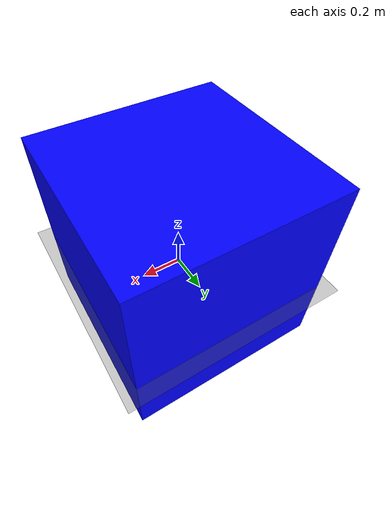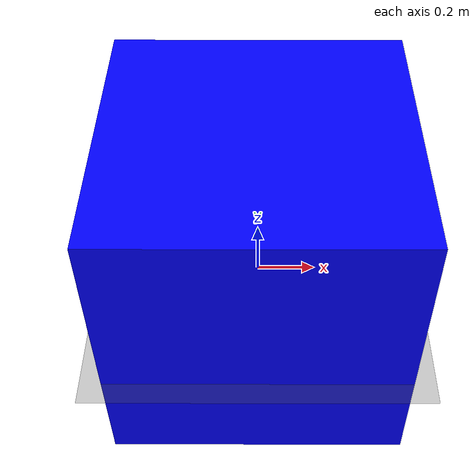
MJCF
<mujoco model="pid_step_test">
  <compiler angle="degree" coordinate="local" inertiafromgeom="true"/>
  <option integrator="RK4" timestep="0.01"/>

  <!-- PID plugin with your current gains -->
  <extension>
    <plugin plugin="mujoco.pid">
      <instance name="pid1">
        <!-- EDIT THESE TO TEST DIFFERENT GAINS -->
        <config key="kp" value="2"/>
        <config key="ki" value="0"/>
        <config key="kd" value="55"/>
      </instance>
    </plugin>
  </extension>

  <asset>
    <texture builtin="gradient" height="100" width="100"
             rgb1="0.6 0.8 1" rgb2="0.1 0.1 0.1" type="skybox"/>
    <texture name="floor_texture" type="2d" builtin="checker"
             width="100" height="100" rgb1="0.1 0.1 0.1" rgb2="0.5 0.5 0.5"/>
    <material name="MatPlane" reflectance="0.5" shininess="1" specular="1"
              texrepeat="10 10" texture="floor_texture"/>
  </asset>

  <worldbody>
    <light cutoff="100" diffuse="0.9 0.9 0.9"
           dir="0 0 -1.3" directional="true"
           exponent="1" pos="0 0 1.3" specular=".1 .1 .1"/>

    <body name="floor" pos="0 0 0">
      <geom name="floor_geom" type="plane" size="10 10 0.1" material="MatPlane"/>
    </body>

    <!-- Agent starts at (0, 0) in XY, height = half-size (0.125) -->
    <body name="agent" pos="0 0 0.125">
      <joint name="j1" type="slide" axis="1 0 0"/>
      <joint name="j2" type="slide" axis="0 1 0"/>
      <!-- new small size 0.125 x 0.125 x 0.125 -->
      <geom name="agent_geom" type="box" size="0.5 0.5 0.5" rgba="0 0 1 1"/>
    </body>
  </worldbody>

  <actuator>
    <!-- PID position controllers for x and y slides -->
    <plugin joint="j1" plugin="mujoco.pid" instance="pid1"/>
    <plugin joint="j2" plugin="mujoco.pid" instance="pid1"/>
  </actuator>
</mujoco>
